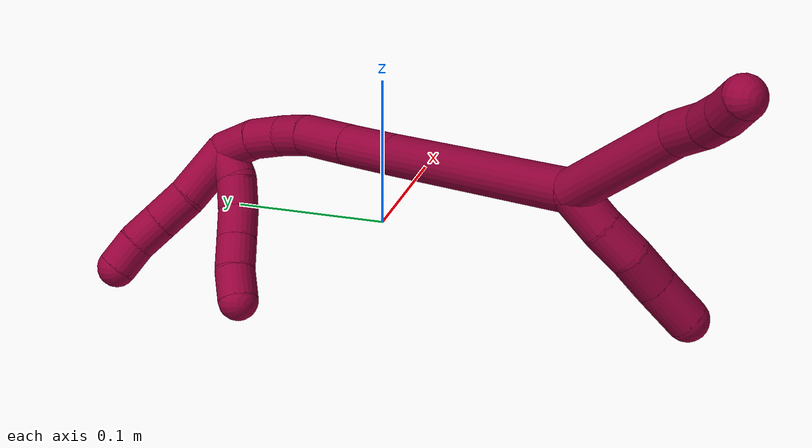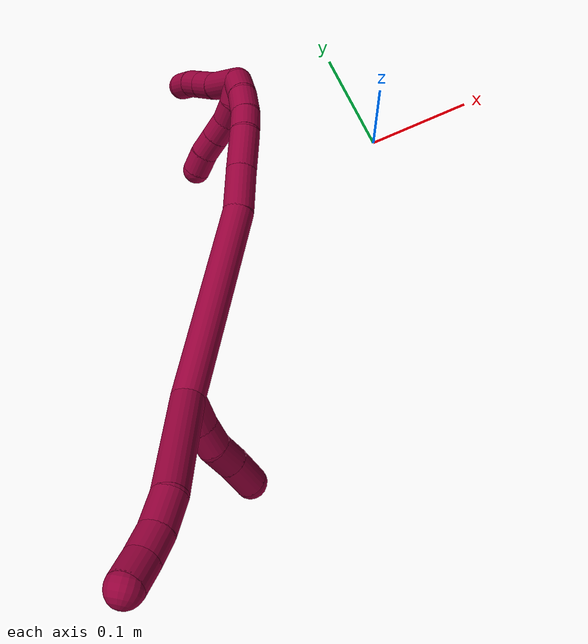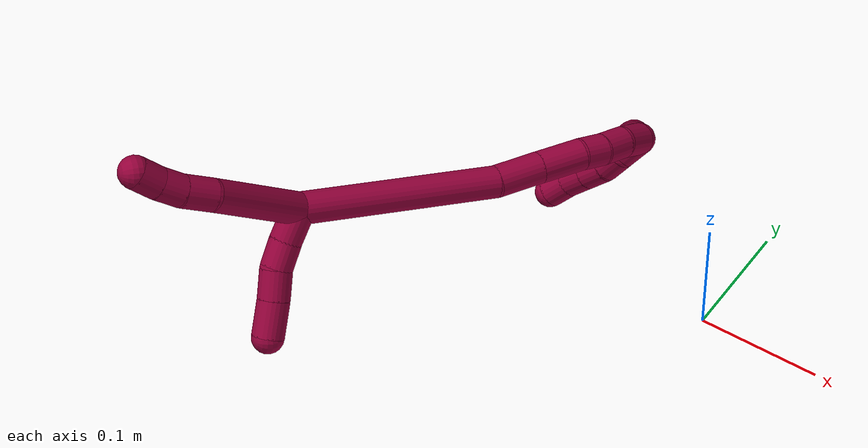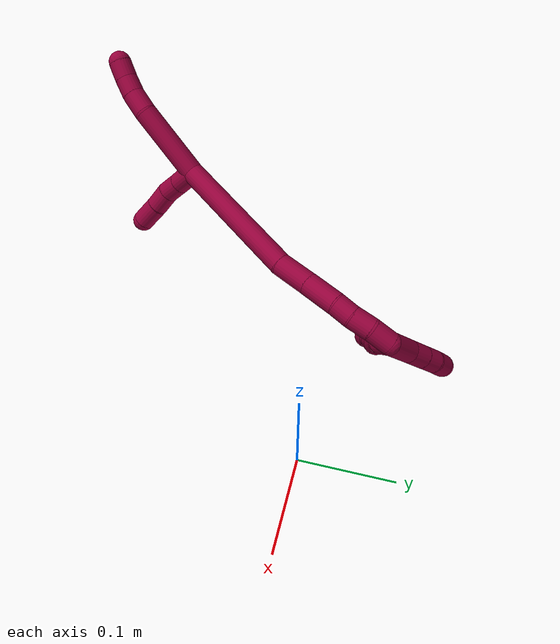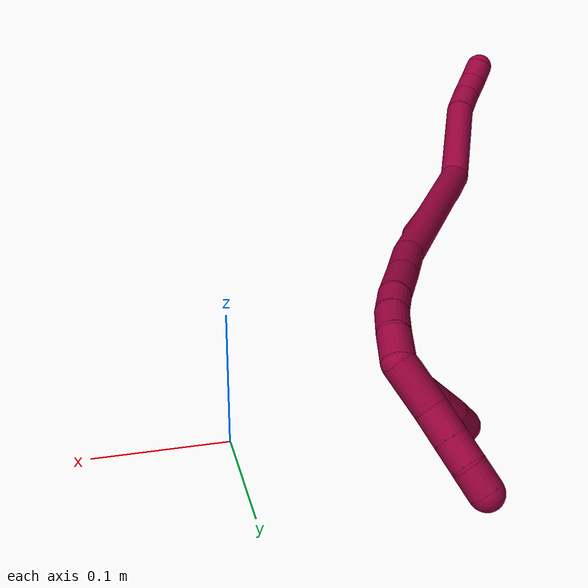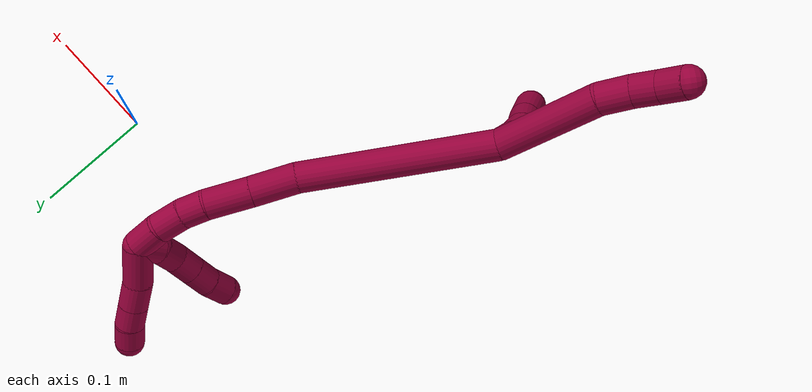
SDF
<sdf version="1.7">
 <world name="default">
  <model name="8">
   <static>0</static>
   <link name="8">
    <collision name="collision-cylinder-e_1_2_8">
     <pose>0.005025 -0.019641 0.037252 0.485199 0.118768 0.029424</pose>
     <geometry><cylinder><radius>0.0125</radius><length>0.084823</length></cylinder></geometry>
     <surface>
      <friction><ode><mu>1.16</mu><mu2>1.16</mu2><slip1>0</slip1><slip2>0</slip2></ode></friction>
      <contact><ode><kp>1e+06</kp><kd>1</kd><max_vel>0</max_vel><min_depth>0.001</min_depth></ode></contact>
     </surface>
    </collision>
    <visual name="visual-cylinder-e_1_2_8">
     <pose>0.005025 -0.019641 0.037252 0.485199 0.118768 0.029424</pose>
     <geometry><cylinder><radius>0.0125</radius><length>0.084823</length></cylinder></geometry>
     <material><ambient>0.584314 0 0.227451 1</ambient></material>
    </visual>
    <collision name="collision-cylinder-e_2_8_9">
     <pose>0.012294 -0.042517 0.086448 0.26454 0.179363 0.023927</pose>
     <geometry><cylinder><radius>0.0125</radius><length>0.025151</length></cylinder></geometry>
     <surface>
      <friction><ode><mu>1.16</mu><mu2>1.16</mu2><slip1>0</slip1><slip2>0</slip2></ode></friction>
      <contact><ode><kp>1e+06</kp><kd>1</kd><max_vel>0</max_vel><min_depth>0.001</min_depth></ode></contact>
     </surface>
    </collision>
    <visual name="visual-cylinder-e_2_8_9">
     <pose>0.012294 -0.042517 0.086448 0.26454 0.179363 0.023927</pose>
     <geometry><cylinder><radius>0.0125</radius><length>0.025151</length></cylinder></geometry>
     <material><ambient>0.584314 0 0.227451 1</ambient></material>
    </visual>
    <collision name="collision-cylinder-e_3_9_10">
     <pose>0.017848 -0.048701 0.107361 0.317675 0.337196 0.054518</pose>
     <geometry><cylinder><radius>0.0125</radius><length>0.020011</length></cylinder></geometry>
     <surface>
      <friction><ode><mu>1.16</mu><mu2>1.16</mu2><slip1>0</slip1><slip2>0</slip2></ode></friction>
      <contact><ode><kp>1e+06</kp><kd>1</kd><max_vel>0</max_vel><min_depth>0.001</min_depth></ode></contact>
     </surface>
    </collision>
    <visual name="visual-cylinder-e_3_9_10">
     <pose>0.017848 -0.048701 0.107361 0.317675 0.337196 0.054518</pose>
     <geometry><cylinder><radius>0.0125</radius><length>0.020011</length></cylinder></geometry>
     <material><ambient>0.584314 0 0.227451 1</ambient></material>
    </visual>
    <collision name="collision-cylinder-e_4_10_6">
     <pose>0.025162 -0.055398 0.124701 0.420877 0.41163 0.089128</pose>
     <geometry><cylinder><radius>0.0125</radius><length>0.020015</length></cylinder></geometry>
     <surface>
      <friction><ode><mu>1.16</mu><mu2>1.16</mu2><slip1>0</slip1><slip2>0</slip2></ode></friction>
      <contact><ode><kp>1e+06</kp><kd>1</kd><max_vel>0</max_vel><min_depth>0.001</min_depth></ode></contact>
     </surface>
    </collision>
    <visual name="visual-cylinder-e_4_10_6">
     <pose>0.025162 -0.055398 0.124701 0.420877 0.41163 0.089128</pose>
     <geometry><cylinder><radius>0.0125</radius><length>0.020015</length></cylinder></geometry>
     <material><ambient>0.584314 0 0.227451 1</ambient></material>
    </visual>
    <collision name="collision-cylinder-e_1_2_11">
     <pose>-0.010203 0.006257 0.005519 -0.847975 -0.88535 0.421583</pose>
     <geometry><cylinder><radius>0.0125</radius><length>0.02636</length></cylinder></geometry>
     <surface>
      <friction><ode><mu>1.16</mu><mu2>1.16</mu2><slip1>0</slip1><slip2>0</slip2></ode></friction>
      <contact><ode><kp>1e+06</kp><kd>1</kd><max_vel>0</max_vel><min_depth>0.001</min_depth></ode></contact>
     </surface>
    </collision>
    <visual name="visual-cylinder-e_1_2_11">
     <pose>-0.010203 0.006257 0.005519 -0.847975 -0.88535 0.421583</pose>
     <geometry><cylinder><radius>0.0125</radius><length>0.02636</length></cylinder></geometry>
     <material><ambient>0.584314 0 0.227451 1</ambient></material>
    </visual>
    <collision name="collision-cylinder-e_2_11_12">
     <pose>-0.029434 0.01673 0.015232 -0.78798 -0.988282 0.440648</pose>
     <geometry><cylinder><radius>0.0125</radius><length>0.021621</length></cylinder></geometry>
     <surface>
      <friction><ode><mu>1.16</mu><mu2>1.16</mu2><slip1>0</slip1><slip2>0</slip2></ode></friction>
      <contact><ode><kp>1e+06</kp><kd>1</kd><max_vel>0</max_vel><min_depth>0.001</min_depth></ode></contact>
     </surface>
    </collision>
    <visual name="visual-cylinder-e_2_11_12">
     <pose>-0.029434 0.01673 0.015232 -0.78798 -0.988282 0.440648</pose>
     <geometry><cylinder><radius>0.0125</radius><length>0.021621</length></cylinder></geometry>
     <material><ambient>0.584314 0 0.227451 1</ambient></material>
    </visual>
    <collision name="collision-cylinder-e_3_12_13">
     <pose>-0.04912 0.025463 0.021226 -1.19165 -1.14285 0.822227</pose>
     <geometry><cylinder><radius>0.0125</radius><length>0.023431</length></cylinder></geometry>
     <surface>
      <friction><ode><mu>1.16</mu><mu2>1.16</mu2><slip1>0</slip1><slip2>0</slip2></ode></friction>
      <contact><ode><kp>1e+06</kp><kd>1</kd><max_vel>0</max_vel><min_depth>0.001</min_depth></ode></contact>
     </surface>
    </collision>
    <visual name="visual-cylinder-e_3_12_13">
     <pose>-0.04912 0.025463 0.021226 -1.19165 -1.14285 0.822227</pose>
     <geometry><cylinder><radius>0.0125</radius><length>0.023431</length></cylinder></geometry>
     <material><ambient>0.584314 0 0.227451 1</ambient></material>
    </visual>
    <collision name="collision-cylinder-e_4_13_5">
     <pose>-0.072598 0.035414 0.026261 -1.03381 -1.11244 0.679415</pose>
     <geometry><cylinder><radius>0.0125</radius><length>0.028589</length></cylinder></geometry>
     <surface>
      <friction><ode><mu>1.16</mu><mu2>1.16</mu2><slip1>0</slip1><slip2>0</slip2></ode></friction>
      <contact><ode><kp>1e+06</kp><kd>1</kd><max_vel>0</max_vel><min_depth>0.001</min_depth></ode></contact>
     </surface>
    </collision>
    <visual name="visual-cylinder-e_4_13_5">
     <pose>-0.072598 0.035414 0.026261 -1.03381 -1.11244 0.679415</pose>
     <geometry><cylinder><radius>0.0125</radius><length>0.028589</length></cylinder></geometry>
     <material><ambient>0.584314 0 0.227451 1</ambient></material>
    </visual>
    <collision name="collision-cylinder-e_1_2_14">
     <pose>0.000657 0.000805 -0.078724 -3.13137 0.008346 -1.36891</pose>
     <geometry><cylinder><radius>0.0125</radius><length>0.157461</length></cylinder></geometry>
     <surface>
      <friction><ode><mu>1.16</mu><mu2>1.16</mu2><slip1>0</slip1><slip2>0</slip2></ode></friction>
      <contact><ode><kp>1e+06</kp><kd>1</kd><max_vel>0</max_vel><min_depth>0.001</min_depth></ode></contact>
     </surface>
    </collision>
    <visual name="visual-cylinder-e_1_2_14">
     <pose>0.000657 0.000805 -0.078724 -3.13137 0.008346 -1.36891</pose>
     <geometry><cylinder><radius>0.0125</radius><length>0.157461</length></cylinder></geometry>
     <material><ambient>0.584314 0 0.227451 1</ambient></material>
    </visual>
    <collision name="collision-cylinder-e_2_14_15">
     <pose>0.004737 0.002213 -0.17594 -3.109 0.182926 -2.78985</pose>
     <geometry><cylinder><radius>0.0125</radius><length>0.037633</length></cylinder></geometry>
     <surface>
      <friction><ode><mu>1.16</mu><mu2>1.16</mu2><slip1>0</slip1><slip2>0</slip2></ode></friction>
      <contact><ode><kp>1e+06</kp><kd>1</kd><max_vel>0</max_vel><min_depth>0.001</min_depth></ode></contact>
     </surface>
    </collision>
    <visual name="visual-cylinder-e_2_14_15">
     <pose>0.004737 0.002213 -0.17594 -3.109 0.182926 -2.78985</pose>
     <geometry><cylinder><radius>0.0125</radius><length>0.037633</length></cylinder></geometry>
     <material><ambient>0.584314 0 0.227451 1</ambient></material>
    </visual>
    <collision name="collision-cylinder-e_3_15_16">
     <pose>0.011297 0.003142 -0.212738 -3.12379 0.169723 -2.93312</pose>
     <geometry><cylinder><radius>0.0125</radius><length>0.03715</length></cylinder></geometry>
     <surface>
      <friction><ode><mu>1.16</mu><mu2>1.16</mu2><slip1>0</slip1><slip2>0</slip2></ode></friction>
      <contact><ode><kp>1e+06</kp><kd>1</kd><max_vel>0</max_vel><min_depth>0.001</min_depth></ode></contact>
     </surface>
    </collision>
    <visual name="visual-cylinder-e_3_15_16">
     <pose>0.011297 0.003142 -0.212738 -3.12379 0.169723 -2.93312</pose>
     <geometry><cylinder><radius>0.0125</radius><length>0.03715</length></cylinder></geometry>
     <material><ambient>0.584314 0 0.227451 1</ambient></material>
    </visual>
    <collision name="collision-cylinder-e_4_16_17">
     <pose>0.01567 0.005351 -0.24091 -2.95302 0.122318 -1.14926</pose>
     <geometry><cylinder><radius>0.0125</radius><length>0.020242</length></cylinder></geometry>
     <surface>
      <friction><ode><mu>1.16</mu><mu2>1.16</mu2><slip1>0</slip1><slip2>0</slip2></ode></friction>
      <contact><ode><kp>1e+06</kp><kd>1</kd><max_vel>0</max_vel><min_depth>0.001</min_depth></ode></contact>
     </surface>
    </collision>
    <visual name="visual-cylinder-e_4_16_17">
     <pose>0.01567 0.005351 -0.24091 -2.95302 0.122318 -1.14926</pose>
     <geometry><cylinder><radius>0.0125</radius><length>0.020242</length></cylinder></geometry>
     <material><ambient>0.584314 0 0.227451 1</ambient></material>
    </visual>
    <collision name="collision-cylinder-e_5_17_18">
     <pose>0.019455 0.010706 -0.261495 -2.82835 0.222669 -1.2321</pose>
     <geometry><cylinder><radius>0.0125</radius><length>0.023102</length></cylinder></geometry>
     <surface>
      <friction><ode><mu>1.16</mu><mu2>1.16</mu2><slip1>0</slip1><slip2>0</slip2></ode></friction>
      <contact><ode><kp>1e+06</kp><kd>1</kd><max_vel>0</max_vel><min_depth>0.001</min_depth></ode></contact>
     </surface>
    </collision>
    <visual name="visual-cylinder-e_5_17_18">
     <pose>0.019455 0.010706 -0.261495 -2.82835 0.222669 -1.2321</pose>
     <geometry><cylinder><radius>0.0125</radius><length>0.023102</length></cylinder></geometry>
     <material><ambient>0.584314 0 0.227451 1</ambient></material>
    </visual>
    <collision name="collision-cylinder-e_6_18_1">
     <pose>0.023736 0.020287 -0.282637 -2.61146 0.14217 -0.513063</pose>
     <geometry><cylinder><radius>0.0125</radius><length>0.024412</length></cylinder></geometry>
     <surface>
      <friction><ode><mu>1.16</mu><mu2>1.16</mu2><slip1>0</slip1><slip2>0</slip2></ode></friction>
      <contact><ode><kp>1e+06</kp><kd>1</kd><max_vel>0</max_vel><min_depth>0.001</min_depth></ode></contact>
     </surface>
    </collision>
    <visual name="visual-cylinder-e_6_18_1">
     <pose>0.023736 0.020287 -0.282637 -2.61146 0.14217 -0.513063</pose>
     <geometry><cylinder><radius>0.0125</radius><length>0.024412</length></cylinder></geometry>
     <material><ambient>0.584314 0 0.227451 1</ambient></material>
    </visual>
    <collision name="collision-cylinder-e_1_1_19">
     <pose>0.029156 0.043503 -0.298462 -1.87659 0.20289 -0.275999</pose>
     <geometry><cylinder><radius>0.0125</radius><length>0.036629</length></cylinder></geometry>
     <surface>
      <friction><ode><mu>1.16</mu><mu2>1.16</mu2><slip1>0</slip1><slip2>0</slip2></ode></friction>
      <contact><ode><kp>1e+06</kp><kd>1</kd><max_vel>0</max_vel><min_depth>0.001</min_depth></ode></contact>
     </surface>
    </collision>
    <visual name="visual-cylinder-e_1_1_19">
     <pose>0.029156 0.043503 -0.298462 -1.87659 0.20289 -0.275999</pose>
     <geometry><cylinder><radius>0.0125</radius><length>0.036629</length></cylinder></geometry>
     <material><ambient>0.584314 0 0.227451 1</ambient></material>
    </visual>
    <collision name="collision-cylinder-e_2_19_20">
     <pose>0.035788 0.070721 -0.308848 -2.02889 0.255295 -0.407051</pose>
     <geometry><cylinder><radius>0.0125</radius><length>0.023302</length></cylinder></geometry>
     <surface>
      <friction><ode><mu>1.16</mu><mu2>1.16</mu2><slip1>0</slip1><slip2>0</slip2></ode></friction>
      <contact><ode><kp>1e+06</kp><kd>1</kd><max_vel>0</max_vel><min_depth>0.001</min_depth></ode></contact>
     </surface>
    </collision>
    <visual name="visual-cylinder-e_2_19_20">
     <pose>0.035788 0.070721 -0.308848 -2.02889 0.255295 -0.407051</pose>
     <geometry><cylinder><radius>0.0125</radius><length>0.023302</length></cylinder></geometry>
     <material><ambient>0.584314 0 0.227451 1</ambient></material>
    </visual>
    <collision name="collision-cylinder-e_3_20_21">
     <pose>0.041303 0.089531 -0.318113 -2.02793 0.259397 -0.413053</pose>
     <geometry><cylinder><radius>0.0125</radius><length>0.02006</length></cylinder></geometry>
     <surface>
      <friction><ode><mu>1.16</mu><mu2>1.16</mu2><slip1>0</slip1><slip2>0</slip2></ode></friction>
      <contact><ode><kp>1e+06</kp><kd>1</kd><max_vel>0</max_vel><min_depth>0.001</min_depth></ode></contact>
     </surface>
    </collision>
    <visual name="visual-cylinder-e_3_20_21">
     <pose>0.041303 0.089531 -0.318113 -2.02793 0.259397 -0.413053</pose>
     <geometry><cylinder><radius>0.0125</radius><length>0.02006</length></cylinder></geometry>
     <material><ambient>0.584314 0 0.227451 1</ambient></material>
    </visual>
    <collision name="collision-cylinder-e_4_21_4">
     <pose>0.045513 0.107635 -0.325384 -1.8789 0.164348 -0.224334</pose>
     <geometry><cylinder><radius>0.0125</radius><length>0.020009</length></cylinder></geometry>
     <surface>
      <friction><ode><mu>1.16</mu><mu2>1.16</mu2><slip1>0</slip1><slip2>0</slip2></ode></friction>
      <contact><ode><kp>1e+06</kp><kd>1</kd><max_vel>0</max_vel><min_depth>0.001</min_depth></ode></contact>
     </surface>
    </collision>
    <visual name="visual-cylinder-e_4_21_4">
     <pose>0.045513 0.107635 -0.325384 -1.8789 0.164348 -0.224334</pose>
     <geometry><cylinder><radius>0.0125</radius><length>0.020009</length></cylinder></geometry>
     <material><ambient>0.584314 0 0.227451 1</ambient></material>
    </visual>
    <collision name="collision-cylinder-e_1_1_22">
     <pose>0.021934 0.033516 -0.286991 -0.86475 -0.360898 0.167989</pose>
     <geometry><cylinder><radius>0.0125</radius><length>0.02</length></cylinder></geometry>
     <surface>
      <friction><ode><mu>1.16</mu><mu2>1.16</mu2><slip1>0</slip1><slip2>0</slip2></ode></friction>
      <contact><ode><kp>1e+06</kp><kd>1</kd><max_vel>0</max_vel><min_depth>0.001</min_depth></ode></contact>
     </surface>
    </collision>
    <visual name="visual-cylinder-e_1_1_22">
     <pose>0.021934 0.033516 -0.286991 -0.86475 -0.360898 0.167989</pose>
     <geometry><cylinder><radius>0.0125</radius><length>0.02</length></cylinder></geometry>
     <material><ambient>0.584314 0 0.227451 1</ambient></material>
    </visual>
    <collision name="collision-cylinder-e_2_22_23">
     <pose>0.016072 0.049686 -0.277366 -1.19653 -0.235263 0.16075</pose>
     <geometry><cylinder><radius>0.0125</radius><length>0.02</length></cylinder></geometry>
     <surface>
      <friction><ode><mu>1.16</mu><mu2>1.16</mu2><slip1>0</slip1><slip2>0</slip2></ode></friction>
      <contact><ode><kp>1e+06</kp><kd>1</kd><max_vel>0</max_vel><min_depth>0.001</min_depth></ode></contact>
     </surface>
    </collision>
    <visual name="visual-cylinder-e_2_22_23">
     <pose>0.016072 0.049686 -0.277366 -1.19653 -0.235263 0.16075</pose>
     <geometry><cylinder><radius>0.0125</radius><length>0.02</length></cylinder></geometry>
     <material><ambient>0.584314 0 0.227451 1</ambient></material>
    </visual>
    <collision name="collision-cylinder-e_3_23_24">
     <pose>0.013411 0.067694 -0.269374 -1.11087 -0.03299 0.020475</pose>
     <geometry><cylinder><radius>0.0125</radius><length>0.02</length></cylinder></geometry>
     <surface>
      <friction><ode><mu>1.16</mu><mu2>1.16</mu2><slip1>0</slip1><slip2>0</slip2></ode></friction>
      <contact><ode><kp>1e+06</kp><kd>1</kd><max_vel>0</max_vel><min_depth>0.001</min_depth></ode></contact>
     </surface>
    </collision>
    <visual name="visual-cylinder-e_3_23_24">
     <pose>0.013411 0.067694 -0.269374 -1.11087 -0.03299 0.020475</pose>
     <geometry><cylinder><radius>0.0125</radius><length>0.02</length></cylinder></geometry>
     <material><ambient>0.584314 0 0.227451 1</ambient></material>
    </visual>
    <collision name="collision-cylinder-e_4_24_25">
     <pose>0.012781 0.085621 -0.260531 -1.11422 -0.030095 0.018748</pose>
     <geometry><cylinder><radius>0.0125</radius><length>0.02</length></cylinder></geometry>
     <surface>
      <friction><ode><mu>1.16</mu><mu2>1.16</mu2><slip1>0</slip1><slip2>0</slip2></ode></friction>
      <contact><ode><kp>1e+06</kp><kd>1</kd><max_vel>0</max_vel><min_depth>0.001</min_depth></ode></contact>
     </surface>
    </collision>
    <visual name="visual-cylinder-e_4_24_25">
     <pose>0.012781 0.085621 -0.260531 -1.11422 -0.030095 0.018748</pose>
     <geometry><cylinder><radius>0.0125</radius><length>0.02</length></cylinder></geometry>
     <material><ambient>0.584314 0 0.227451 1</ambient></material>
    </visual>
    <collision name="collision-cylinder-e_5_25_3">
     <pose>0.010827 0.103075 -0.251092 -1.03534 -0.166055 0.09471</pose>
     <geometry><cylinder><radius>0.0125</radius><length>0.02</length></cylinder></geometry>
     <surface>
      <friction><ode><mu>1.16</mu><mu2>1.16</mu2><slip1>0</slip1><slip2>0</slip2></ode></friction>
      <contact><ode><kp>1e+06</kp><kd>1</kd><max_vel>0</max_vel><min_depth>0.001</min_depth></ode></contact>
     </surface>
    </collision>
    <visual name="visual-cylinder-e_5_25_3">
     <pose>0.010827 0.103075 -0.251092 -1.03534 -0.166055 0.09471</pose>
     <geometry><cylinder><radius>0.0125</radius><length>0.02</length></cylinder></geometry>
     <material><ambient>0.584314 0 0.227451 1</ambient></material>
    </visual>
    <collision name="collision-sphere-3">
     <pose>0.009174 0.111557 -0.24606 0 -0 0</pose>
     <geometry><sphere><radius>0.0125</radius></sphere></geometry>
     <surface>
      <friction><ode><mu>1.16</mu><mu2>1.16</mu2><slip1>0</slip1><slip2>0</slip2></ode></friction>
      <contact><ode><kp>1e+06</kp><kd>1</kd><max_vel>0</max_vel><min_depth>0.001</min_depth></ode></contact>
     </surface>
    </collision>
    <visual name="visual-sphere-3">
     <pose>0.009174 0.111557 -0.24606 0 -0 0</pose>
     <geometry><sphere><radius>0.0125</radius></sphere></geometry>
     <material><ambient>0.584314 0 0.227451 1</ambient></material>
    </visual>
    <collision name="collision-sphere-25">
     <pose>0.01248 0.094593 -0.256124 0 -0 0</pose>
     <geometry><sphere><radius>0.0125</radius></sphere></geometry>
     <surface>
      <friction><ode><mu>1.16</mu><mu2>1.16</mu2><slip1>0</slip1><slip2>0</slip2></ode></friction>
      <contact><ode><kp>1e+06</kp><kd>1</kd><max_vel>0</max_vel><min_depth>0.001</min_depth></ode></contact>
     </surface>
    </collision>
    <visual name="visual-sphere-25">
     <pose>0.01248 0.094593 -0.256124 0 -0 0</pose>
     <geometry><sphere><radius>0.0125</radius></sphere></geometry>
     <material><ambient>0.584314 0 0.227451 1</ambient></material>
    </visual>
    <collision name="collision-sphere-24">
     <pose>0.013081 0.07665 -0.264938 0 -0 0</pose>
     <geometry><sphere><radius>0.0125</radius></sphere></geometry>
     <surface>
      <friction><ode><mu>1.16</mu><mu2>1.16</mu2><slip1>0</slip1><slip2>0</slip2></ode></friction>
      <contact><ode><kp>1e+06</kp><kd>1</kd><max_vel>0</max_vel><min_depth>0.001</min_depth></ode></contact>
     </surface>
    </collision>
    <visual name="visual-sphere-24">
     <pose>0.013081 0.07665 -0.264938 0 -0 0</pose>
     <geometry><sphere><radius>0.0125</radius></sphere></geometry>
     <material><ambient>0.584314 0 0.227451 1</ambient></material>
    </visual>
    <collision name="collision-sphere-23">
     <pose>0.013741 0.058738 -0.273811 0 -0 0</pose>
     <geometry><sphere><radius>0.0125</radius></sphere></geometry>
     <surface>
      <friction><ode><mu>1.16</mu><mu2>1.16</mu2><slip1>0</slip1><slip2>0</slip2></ode></friction>
      <contact><ode><kp>1e+06</kp><kd>1</kd><max_vel>0</max_vel><min_depth>0.001</min_depth></ode></contact>
     </surface>
    </collision>
    <visual name="visual-sphere-23">
     <pose>0.013741 0.058738 -0.273811 0 -0 0</pose>
     <geometry><sphere><radius>0.0125</radius></sphere></geometry>
     <material><ambient>0.584314 0 0.227451 1</ambient></material>
    </visual>
    <collision name="collision-sphere-22">
     <pose>0.018403 0.040635 -0.280921 0 -0 0</pose>
     <geometry><sphere><radius>0.0125</radius></sphere></geometry>
     <surface>
      <friction><ode><mu>1.16</mu><mu2>1.16</mu2><slip1>0</slip1><slip2>0</slip2></ode></friction>
      <contact><ode><kp>1e+06</kp><kd>1</kd><max_vel>0</max_vel><min_depth>0.001</min_depth></ode></contact>
     </surface>
    </collision>
    <visual name="visual-sphere-22">
     <pose>0.018403 0.040635 -0.280921 0 -0 0</pose>
     <geometry><sphere><radius>0.0125</radius></sphere></geometry>
     <material><ambient>0.584314 0 0.227451 1</ambient></material>
    </visual>
    <collision name="collision-sphere-4">
     <pose>0.04715 0.11704 -0.328377 0 -0 0</pose>
     <geometry><sphere><radius>0.0125</radius></sphere></geometry>
     <surface>
      <friction><ode><mu>1.16</mu><mu2>1.16</mu2><slip1>0</slip1><slip2>0</slip2></ode></friction>
      <contact><ode><kp>1e+06</kp><kd>1</kd><max_vel>0</max_vel><min_depth>0.001</min_depth></ode></contact>
     </surface>
    </collision>
    <visual name="visual-sphere-4">
     <pose>0.04715 0.11704 -0.328377 0 -0 0</pose>
     <geometry><sphere><radius>0.0125</radius></sphere></geometry>
     <material><ambient>0.584314 0 0.227451 1</ambient></material>
    </visual>
    <collision name="collision-sphere-21">
     <pose>0.043876 0.09823 -0.322391 0 -0 0</pose>
     <geometry><sphere><radius>0.0125</radius></sphere></geometry>
     <surface>
      <friction><ode><mu>1.16</mu><mu2>1.16</mu2><slip1>0</slip1><slip2>0</slip2></ode></friction>
      <contact><ode><kp>1e+06</kp><kd>1</kd><max_vel>0</max_vel><min_depth>0.001</min_depth></ode></contact>
     </surface>
    </collision>
    <visual name="visual-sphere-21">
     <pose>0.043876 0.09823 -0.322391 0 -0 0</pose>
     <geometry><sphere><radius>0.0125</radius></sphere></geometry>
     <material><ambient>0.584314 0 0.227451 1</ambient></material>
    </visual>
    <collision name="collision-sphere-20">
     <pose>0.038731 0.080832 -0.313834 0 -0 0</pose>
     <geometry><sphere><radius>0.0125</radius></sphere></geometry>
     <surface>
      <friction><ode><mu>1.16</mu><mu2>1.16</mu2><slip1>0</slip1><slip2>0</slip2></ode></friction>
      <contact><ode><kp>1e+06</kp><kd>1</kd><max_vel>0</max_vel><min_depth>0.001</min_depth></ode></contact>
     </surface>
    </collision>
    <visual name="visual-sphere-20">
     <pose>0.038731 0.080832 -0.313834 0 -0 0</pose>
     <geometry><sphere><radius>0.0125</radius></sphere></geometry>
     <material><ambient>0.584314 0 0.227451 1</ambient></material>
    </visual>
    <collision name="collision-sphere-11">
     <pose>-0.020406 0.012514 0.011038 0 -0 0</pose>
     <geometry><sphere><radius>0.0125</radius></sphere></geometry>
     <surface>
      <friction><ode><mu>1.16</mu><mu2>1.16</mu2><slip1>0</slip1><slip2>0</slip2></ode></friction>
      <contact><ode><kp>1e+06</kp><kd>1</kd><max_vel>0</max_vel><min_depth>0.001</min_depth></ode></contact>
     </surface>
    </collision>
    <visual name="visual-sphere-11">
     <pose>-0.020406 0.012514 0.011038 0 -0 0</pose>
     <geometry><sphere><radius>0.0125</radius></sphere></geometry>
     <material><ambient>0.584314 0 0.227451 1</ambient></material>
    </visual>
    <collision name="collision-sphere-6">
     <pose>0.029166 -0.059145 0.133073 0 -0 0</pose>
     <geometry><sphere><radius>0.0125</radius></sphere></geometry>
     <surface>
      <friction><ode><mu>1.16</mu><mu2>1.16</mu2><slip1>0</slip1><slip2>0</slip2></ode></friction>
      <contact><ode><kp>1e+06</kp><kd>1</kd><max_vel>0</max_vel><min_depth>0.001</min_depth></ode></contact>
     </surface>
    </collision>
    <visual name="visual-sphere-6">
     <pose>0.029166 -0.059145 0.133073 0 -0 0</pose>
     <geometry><sphere><radius>0.0125</radius></sphere></geometry>
     <material><ambient>0.584314 0 0.227451 1</ambient></material>
    </visual>
    <collision name="collision-sphere-10">
     <pose>0.021158 -0.051651 0.11633 0 -0 0</pose>
     <geometry><sphere><radius>0.0125</radius></sphere></geometry>
     <surface>
      <friction><ode><mu>1.16</mu><mu2>1.16</mu2><slip1>0</slip1><slip2>0</slip2></ode></friction>
      <contact><ode><kp>1e+06</kp><kd>1</kd><max_vel>0</max_vel><min_depth>0.001</min_depth></ode></contact>
     </surface>
    </collision>
    <visual name="visual-sphere-10">
     <pose>0.021158 -0.051651 0.11633 0 -0 0</pose>
     <geometry><sphere><radius>0.0125</radius></sphere></geometry>
     <material><ambient>0.584314 0 0.227451 1</ambient></material>
    </visual>
    <collision name="collision-sphere-9">
     <pose>0.014538 -0.045752 0.098391 0 -0 0</pose>
     <geometry><sphere><radius>0.0125</radius></sphere></geometry>
     <surface>
      <friction><ode><mu>1.16</mu><mu2>1.16</mu2><slip1>0</slip1><slip2>0</slip2></ode></friction>
      <contact><ode><kp>1e+06</kp><kd>1</kd><max_vel>0</max_vel><min_depth>0.001</min_depth></ode></contact>
     </surface>
    </collision>
    <visual name="visual-sphere-9">
     <pose>0.014538 -0.045752 0.098391 0 -0 0</pose>
     <geometry><sphere><radius>0.0125</radius></sphere></geometry>
     <material><ambient>0.584314 0 0.227451 1</ambient></material>
    </visual>
    <collision name="collision-sphere-2">
     <geometry><sphere><radius>0.0125</radius></sphere></geometry>
     <surface>
      <friction><ode><mu>1.16</mu><mu2>1.16</mu2><slip1>0</slip1><slip2>0</slip2></ode></friction>
      <contact><ode><kp>1e+06</kp><kd>1</kd><max_vel>0</max_vel><min_depth>0.001</min_depth></ode></contact>
     </surface>
    </collision>
    <visual name="visual-sphere-2">
     <geometry><sphere><radius>0.0125</radius></sphere></geometry>
     <material><ambient>0.584314 0 0.227451 1</ambient></material>
    </visual>
    <collision name="collision-sphere-19">
     <pose>0.032846 0.06061 -0.303863 0 -0 0</pose>
     <geometry><sphere><radius>0.0125</radius></sphere></geometry>
     <surface>
      <friction><ode><mu>1.16</mu><mu2>1.16</mu2><slip1>0</slip1><slip2>0</slip2></ode></friction>
      <contact><ode><kp>1e+06</kp><kd>1</kd><max_vel>0</max_vel><min_depth>0.001</min_depth></ode></contact>
     </surface>
    </collision>
    <visual name="visual-sphere-19">
     <pose>0.032846 0.06061 -0.303863 0 -0 0</pose>
     <geometry><sphere><radius>0.0125</radius></sphere></geometry>
     <material><ambient>0.584314 0 0.227451 1</ambient></material>
    </visual>
    <collision name="collision-sphere-8">
     <pose>0.010051 -0.039282 0.074505 0 -0 0</pose>
     <geometry><sphere><radius>0.0125</radius></sphere></geometry>
     <surface>
      <friction><ode><mu>1.16</mu><mu2>1.16</mu2><slip1>0</slip1><slip2>0</slip2></ode></friction>
      <contact><ode><kp>1e+06</kp><kd>1</kd><max_vel>0</max_vel><min_depth>0.001</min_depth></ode></contact>
     </surface>
    </collision>
    <visual name="visual-sphere-8">
     <pose>0.010051 -0.039282 0.074505 0 -0 0</pose>
     <geometry><sphere><radius>0.0125</radius></sphere></geometry>
     <material><ambient>0.584314 0 0.227451 1</ambient></material>
    </visual>
    <collision name="collision-sphere-12">
     <pose>-0.038461 0.020946 0.019427 0 -0 0</pose>
     <geometry><sphere><radius>0.0125</radius></sphere></geometry>
     <surface>
      <friction><ode><mu>1.16</mu><mu2>1.16</mu2><slip1>0</slip1><slip2>0</slip2></ode></friction>
      <contact><ode><kp>1e+06</kp><kd>1</kd><max_vel>0</max_vel><min_depth>0.001</min_depth></ode></contact>
     </surface>
    </collision>
    <visual name="visual-sphere-12">
     <pose>-0.038461 0.020946 0.019427 0 -0 0</pose>
     <geometry><sphere><radius>0.0125</radius></sphere></geometry>
     <material><ambient>0.584314 0 0.227451 1</ambient></material>
    </visual>
    <collision name="collision-sphere-13">
     <pose>-0.059779 0.029979 0.023026 0 -0 0</pose>
     <geometry><sphere><radius>0.0125</radius></sphere></geometry>
     <surface>
      <friction><ode><mu>1.16</mu><mu2>1.16</mu2><slip1>0</slip1><slip2>0</slip2></ode></friction>
      <contact><ode><kp>1e+06</kp><kd>1</kd><max_vel>0</max_vel><min_depth>0.001</min_depth></ode></contact>
     </surface>
    </collision>
    <visual name="visual-sphere-13">
     <pose>-0.059779 0.029979 0.023026 0 -0 0</pose>
     <geometry><sphere><radius>0.0125</radius></sphere></geometry>
     <material><ambient>0.584314 0 0.227451 1</ambient></material>
    </visual>
    <collision name="collision-sphere-5">
     <pose>-0.085417 0.040849 0.029497 0 -0 0</pose>
     <geometry><sphere><radius>0.0125</radius></sphere></geometry>
     <surface>
      <friction><ode><mu>1.16</mu><mu2>1.16</mu2><slip1>0</slip1><slip2>0</slip2></ode></friction>
      <contact><ode><kp>1e+06</kp><kd>1</kd><max_vel>0</max_vel><min_depth>0.001</min_depth></ode></contact>
     </surface>
    </collision>
    <visual name="visual-sphere-5">
     <pose>-0.085417 0.040849 0.029497 0 -0 0</pose>
     <geometry><sphere><radius>0.0125</radius></sphere></geometry>
     <material><ambient>0.584314 0 0.227451 1</ambient></material>
    </visual>
    <collision name="collision-sphere-14">
     <pose>0.001314 0.00161 -0.157447 0 -0 0</pose>
     <geometry><sphere><radius>0.0125</radius></sphere></geometry>
     <surface>
      <friction><ode><mu>1.16</mu><mu2>1.16</mu2><slip1>0</slip1><slip2>0</slip2></ode></friction>
      <contact><ode><kp>1e+06</kp><kd>1</kd><max_vel>0</max_vel><min_depth>0.001</min_depth></ode></contact>
     </surface>
    </collision>
    <visual name="visual-sphere-14">
     <pose>0.001314 0.00161 -0.157447 0 -0 0</pose>
     <geometry><sphere><radius>0.0125</radius></sphere></geometry>
     <material><ambient>0.584314 0 0.227451 1</ambient></material>
    </visual>
    <collision name="collision-sphere-15">
     <pose>0.00816 0.002816 -0.194433 0 -0 0</pose>
     <geometry><sphere><radius>0.0125</radius></sphere></geometry>
     <surface>
      <friction><ode><mu>1.16</mu><mu2>1.16</mu2><slip1>0</slip1><slip2>0</slip2></ode></friction>
      <contact><ode><kp>1e+06</kp><kd>1</kd><max_vel>0</max_vel><min_depth>0.001</min_depth></ode></contact>
     </surface>
    </collision>
    <visual name="visual-sphere-15">
     <pose>0.00816 0.002816 -0.194433 0 -0 0</pose>
     <geometry><sphere><radius>0.0125</radius></sphere></geometry>
     <material><ambient>0.584314 0 0.227451 1</ambient></material>
    </visual>
    <collision name="collision-sphere-16">
     <pose>0.014435 0.003468 -0.231043 0 -0 0</pose>
     <geometry><sphere><radius>0.0125</radius></sphere></geometry>
     <surface>
      <friction><ode><mu>1.16</mu><mu2>1.16</mu2><slip1>0</slip1><slip2>0</slip2></ode></friction>
      <contact><ode><kp>1e+06</kp><kd>1</kd><max_vel>0</max_vel><min_depth>0.001</min_depth></ode></contact>
     </surface>
    </collision>
    <visual name="visual-sphere-16">
     <pose>0.014435 0.003468 -0.231043 0 -0 0</pose>
     <geometry><sphere><radius>0.0125</radius></sphere></geometry>
     <material><ambient>0.584314 0 0.227451 1</ambient></material>
    </visual>
    <collision name="collision-sphere-17">
     <pose>0.016905 0.007234 -0.250778 0 -0 0</pose>
     <geometry><sphere><radius>0.0125</radius></sphere></geometry>
     <surface>
      <friction><ode><mu>1.16</mu><mu2>1.16</mu2><slip1>0</slip1><slip2>0</slip2></ode></friction>
      <contact><ode><kp>1e+06</kp><kd>1</kd><max_vel>0</max_vel><min_depth>0.001</min_depth></ode></contact>
     </surface>
    </collision>
    <visual name="visual-sphere-17">
     <pose>0.016905 0.007234 -0.250778 0 -0 0</pose>
     <geometry><sphere><radius>0.0125</radius></sphere></geometry>
     <material><ambient>0.584314 0 0.227451 1</ambient></material>
    </visual>
    <collision name="collision-sphere-18">
     <pose>0.022006 0.014177 -0.272213 0 -0 0</pose>
     <geometry><sphere><radius>0.0125</radius></sphere></geometry>
     <surface>
      <friction><ode><mu>1.16</mu><mu2>1.16</mu2><slip1>0</slip1><slip2>0</slip2></ode></friction>
      <contact><ode><kp>1e+06</kp><kd>1</kd><max_vel>0</max_vel><min_depth>0.001</min_depth></ode></contact>
     </surface>
    </collision>
    <visual name="visual-sphere-18">
     <pose>0.022006 0.014177 -0.272213 0 -0 0</pose>
     <geometry><sphere><radius>0.0125</radius></sphere></geometry>
     <material><ambient>0.584314 0 0.227451 1</ambient></material>
    </visual>
    <collision name="collision-sphere-1">
     <pose>0.025465 0.026397 -0.293062 0 -0 0</pose>
     <geometry><sphere><radius>0.0125</radius></sphere></geometry>
     <surface>
      <friction><ode><mu>1.16</mu><mu2>1.16</mu2><slip1>0</slip1><slip2>0</slip2></ode></friction>
      <contact><ode><kp>1e+06</kp><kd>1</kd><max_vel>0</max_vel><min_depth>0.001</min_depth></ode></contact>
     </surface>
    </collision>
    <visual name="visual-sphere-1">
     <pose>0.025465 0.026397 -0.293062 0 -0 0</pose>
     <geometry><sphere><radius>0.0125</radius></sphere></geometry>
     <material><ambient>0.584314 0 0.227451 1</ambient></material>
    </visual>
    <inertial>
     <pose>0.006205 0.016637 -0.121286 0 -0 0</pose>
     <mass>0.75</mass>
     <inertia>
      <ixx>-0.000194</ixx>
      <ixy>0</ixy>
      <ixz>0</ixz>
      <iyy>-0.000312</iyy>
      <iyz>0</iyz>
      <izz>-1.4e-05</izz>
     </inertia>
    </inertial>
   </link>
   <pose>-0.244779 -0.182709 0.143639 -1.35536 -0.56757 2.39257</pose>
  </model>
 </world>
</sdf>
